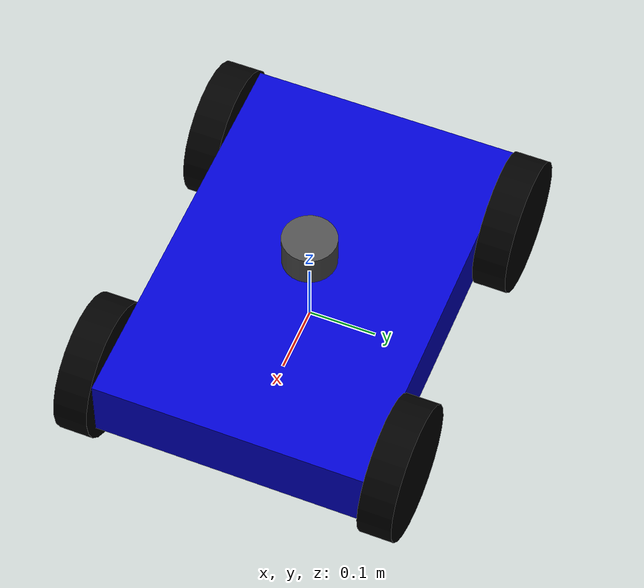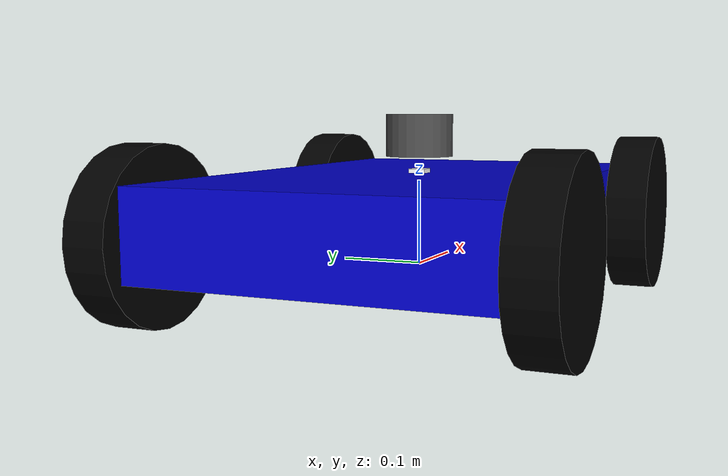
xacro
<?xml version="1.0"?>
<robot name="robot" xmlns:xacro="http://www.ros.org/wiki/xacro">

<xacro:include filename="$(find robot_description)/urdf/robot_gazebo.urdf.xacro"/>
<xacro:include filename="$(find robot_description)/urdf/robot_ros_control.xacro"/>

  <!-- parameters  -->
  <xacro:property name="wheel_radius" value="0.1"/>
  <xacro:property name="wheel_width" value="0.05"/>
  <xacro:property name="width" value="0.4"/>
  <xacro:property name="large" value="0.6"/>
  <xacro:property name="tall" value="0.1"/>
  <xacro:property name="a" value="0.45"/>

  <material name="blue">
    <color rgba="0 0 0.8 1"/>
  </material>
  <material name="black">
    <color rgba="0 0 0 1"/>
  </material>
  <material name="white">
    <color rgba="1 1 1 1"/>
  </material>

  <!-- base link-->
  <link name="base_link"/>

  <!-- body link-->
  <link name="body_link">

    <visual>
      <geometry>
        <box size="${large} ${width} ${tall}"/>
      </geometry>bl_wheel
      <origin xyz="0 0 0"/>
      <material name="blue"/>
    </visual>

    <collision>
      <geometry>
        <box size="${large} ${width} ${tall}"/>
      </geometry>
      <origin xyz="0 0 0"/>
    </collision>

    <inertial>
      <origin xyz="0 0 0"/>
      <mass value="1.0"/>
      <inertia
        ixx="0.02" ixy="0" ixz="0"
        iyy="0.04" iyz="0"
        izz="0.05"/>
    </inertial>

  </link>

  <joint name="base_joint" type="fixed">
    <origin xyz="0 0 ${tall/2 + 0.01}" rpy="0 0 0"/>
    <parent link="base_link" />
    <child link="body_link" />
  </joint>

  <!-- wheel macro -->
  <xacro:macro name="wheel" params="name x y">

    <link name="${name}_wheel">
      <visual>
        <geometry>
          <cylinder radius="${wheel_radius}" length="${wheel_width}"/>
        </geometry>
        <origin rpy="1.5708  0 0"/>
        <material name="black"/>
      </visual>

      <inertial>
        <origin rpy="1.5708 0 0" />
        <mass value="1"/>
        <inertia
          ixx="0.05" ixy="0.0" ixz="0.0"
          iyy="0.05" iyz="0.0"
          izz="0.01"/>
      </inertial>

      <collision>
        <geometry>
          <cylinder radius="${wheel_radius}" length="${wheel_width}"/>
        </geometry>
        <origin rpy="1.5708 0 0"/>
      </collision>
    </link>

    <joint name="${name}_wheel_joint" type="continuous">
      <parent link="body_link"/>
      <child link="${name}_wheel"/>
      <origin xyz="${x} ${y} -0.01"/>
      <axis xyz="0 1 0"/>
    </joint>

  </xacro:macro>

  <!-- wheels -->
  <xacro:wheel name="front_left"  x="${  a/2 }"  y="${  width/2 + wheel_width/2}"/>
  <xacro:wheel name="rear_left"   x="${ -a/2 }"  y="${  width/2 + wheel_width/2}"/>
  <xacro:wheel name="front_right" x="${  a/2 }"  y="${ -width/2 -wheel_width/2}"/>
  <xacro:wheel name="rear_right"  x="${ -a/2 }"  y="${ -width/2 -wheel_width/2 }"/>

  <!-- IMU -->
  <link name="imu_link">
    <inertial>
      <origin xyz="-0.00552433659106688 0.000168210391520346 0.000514000497342681"/>
      <mass value="0.000528415362211671"/>
      <inertia
        ixx="1.46176048428261E-08" ixy="1.40015117949421E-10" ixz="-1.99633872937403E-12"
        iyy="8.59662482954888E-09" iyz="7.52375112767959E-12"
        izz="2.30279421279312E-08"/>
    </inertial>

    <visual>
      <geometry>
        <box size="0.02 0.02 0.01"/>
      </geometry>
      <material name="white"/>
    </visual>

    <collision>
      <geometry>
        <box size="0.02 0.02 0.01"/>
      </geometry>
    </collision>

  </link>

  <joint name="imu_joint" type="fixed">
      <origin xyz="0 0 ${tall/2}" rpy="0 0 0" />
      <parent link="body_link" />
      <child link="imu_link" />
      <axis xyz="0 0 0" />
  </joint>

  <!-- LIDAR -->

  <link name="laser_link">
    <inertial>
      <origin xyz="0 0 0"/>
      <mass value="0.073084435549317"/>
      <inertia
        ixx="1.96074931730795E-05" ixy="-3.62091076640009E-07" ixz="4.28230084046735E-07"
        iyy="2.40983835136327E-05" iyz="1.50180909250652E-08"
        izz="4.14184164228595E-05"/>
    </inertial>

    <visual>
      <geometry>
        <cylinder radius="0.04" length="0.05"/>
      </geometry>
      <material name="dark_grey">
        <color rgba="0.3 0.3 0.3 1"/>
      </material>
    </visual>

    <collision>
      <geometry>
        <cylinder radius="0.04" length="0.05"/>
      </geometry>
    </collision>

  </link>

  <joint name="laser_joint" type="fixed">
    <origin xyz="0 0 0.095" rpy="0 0 3.14" />
    <parent link="body_link" />
    <child link="laser_link" />
    <axis xyz="0 0 0" />
  </joint>

</robot>
